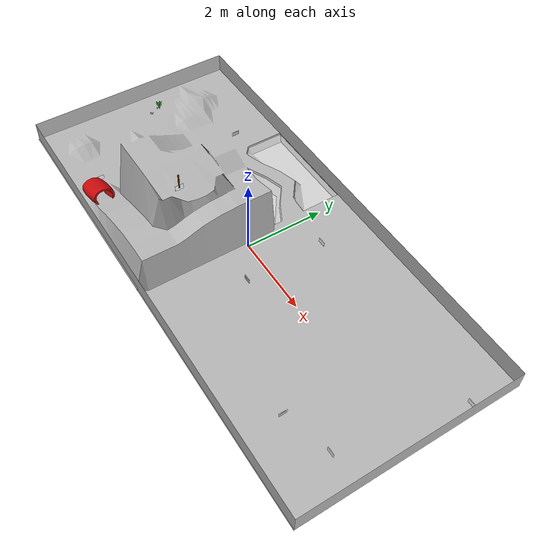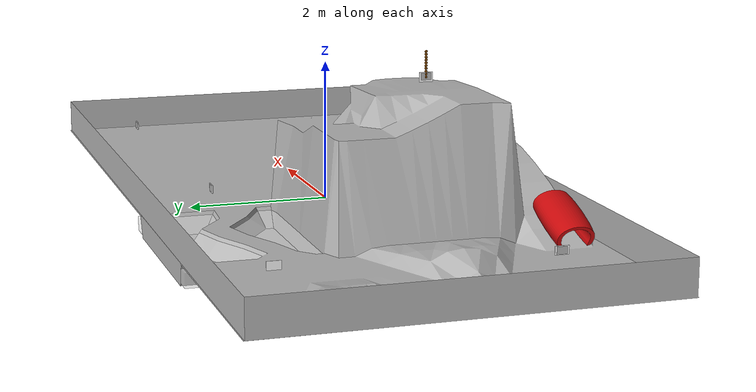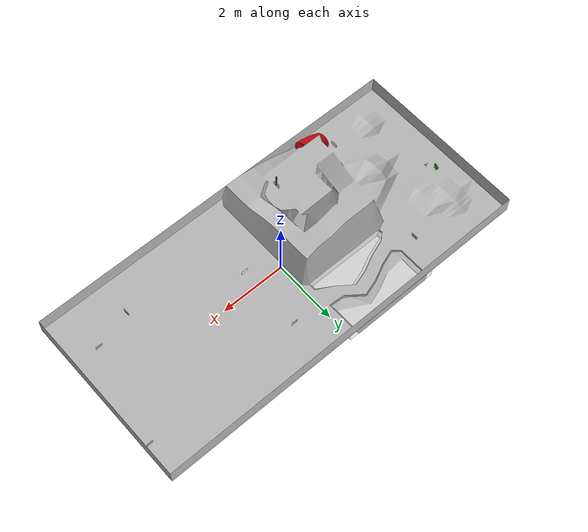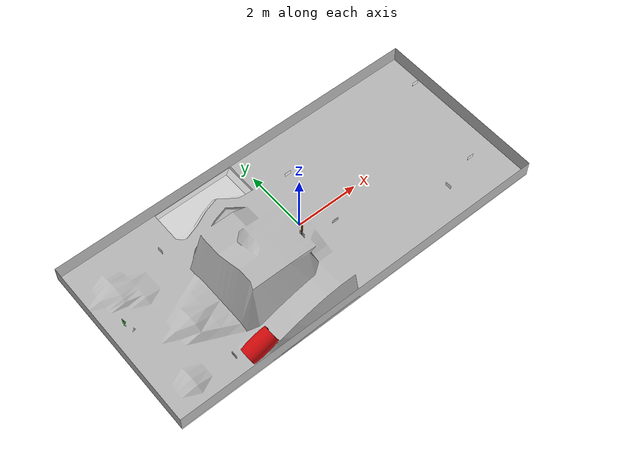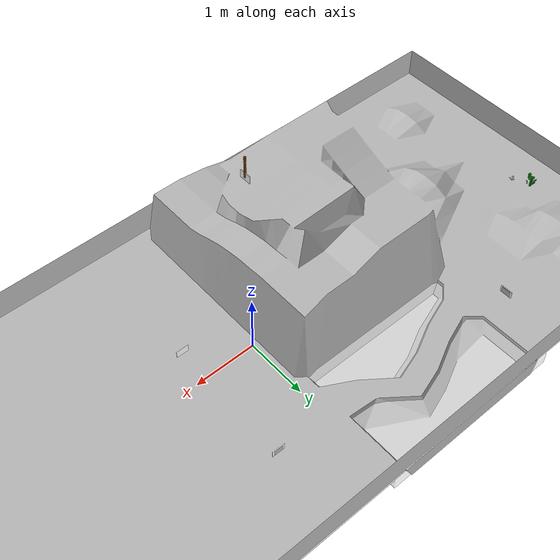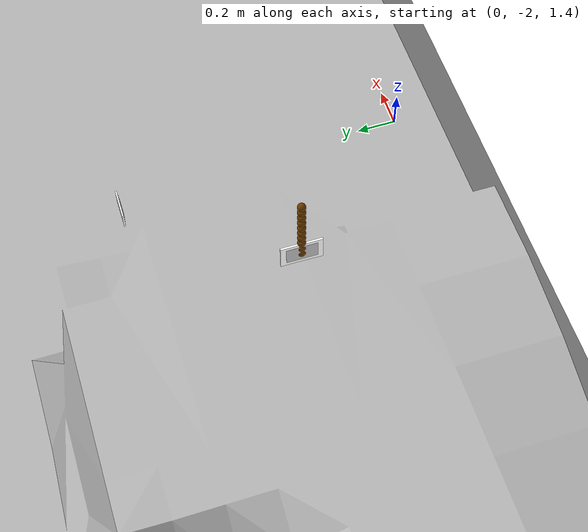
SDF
<sdf version="1.4">
 <world name="default">
  <include><uri>model://full_town</uri><static>true</static></include>
  <include><uri>model://tunnel</uri><pose>-3.2 -2.3 0.29 0 -0.46 0</pose><static>true</static></include>
  <include><uri>model://sun</uri></include>
  <scene><sky><time>12</time></sky><shadows>0</shadows></scene>
  <include>
   <uri>model://water_block</uri>
   <name>water_block</name>
   <pose>-1.56 1.64 -0.15 0 0 0</pose>
   <static>true</static>
  </include>
  <include>
   <uri>model://wall</uri>
   <name>north_wall</name>
   <pose>6 0 0.25 0 0 1.57</pose>
   <static>true</static>
  </include>
  <include>
   <uri>model://wall</uri>
   <name>south_wall</name>
   <pose>-6 0 0.25 0 0 1.57</pose>
   <static>true</static>
  </include>
  <include>
   <uri>model://wall_side</uri>
   <name>east_wall</name>
   <pose>0 -2.75 0.25 0 0 0</pose>
   <static>true</static>
  </include>
  <include>
   <uri>model://wall_side</uri>
   <name>west_wall</name>
   <pose>0 2.75 0.25 0 0 0</pose>
   <static>true</static>
  </include>
  <include><uri>model://car0</uri><static>true</static><pose>5.81 1.64 0.04 0 0 0</pose></include>
  <include><uri>model://car1</uri><static>true</static><pose>5.16 -1.35 0.04 0 0 0</pose></include>
  <include><uri>model://car2</uri><static>true</static><pose>4.00 -1.67 0.04 0 0 -1.57</pose></include>
  <include><uri>model://car3</uri><static>true</static><pose>0.83 -0.54 0.04 0 0 3.14</pose></include>
  <include><uri>model://car4</uri><static>true</static><pose>0.83 1.50 0.04 0 0 0</pose></include>
  <include><uri>model://car5</uri><static>true</static><pose>-3.41 1.71 0.04 0 0 -1.57</pose></include>
  <include><uri>model://car6</uri><static>true</static><pose>-3.80 -2.01 0.04 0 0 1.57</pose></include>
  <include><uri>model://car7</uri><static>true</static><pose>-0.9 -1.2 1.86 0 0 1.57</pose></include>
  <include>
   <uri>model://cactus</uri>
   <name>cactus_01</name>
   <static>true</static>
   <pose>-5.3 0.5 -0.09 0 0 1.57</pose>
  </include>
  <physics type="ode">
   <max_step_size>0.001</max_step_size>
   <real_time_factor>0.3</real_time_factor>
   <real_time_update_rate>1000.0</real_time_update_rate>
  </physics>
  <plugin name="B1_collision_plugin" filename="libcollision_plugin.so">
   <pubPeriod>2</pubPeriod>
   <pubTopic>B1_Hit</pubTopic>
   <collisionObject1>B1</collisionObject1>
  </plugin>
  <plugin name="R1_collision_plugin" filename="libcollision_plugin.so">
   <pubPeriod>2</pubPeriod>
   <pubTopic>R1_Hit</pubTopic>
   <collisionObject1>R1</collisionObject1>
  </plugin>
  <model name="wind_model">
   <pose>-0.9 -1.2 1.3 0 0 0</pose>
   <static>false</static>
   <enable_wind>true</enable_wind>
   <self_collide>true</self_collide>
   <link name="roof">
    <pose>-0.9 -1.2 1.8 0 0 0</pose>
    <collision name="collision">
     <geometry><box><size>1 1 0.1</size></box></geometry>
     <surface><friction><ode><mu>0.1</mu><mu2>0</mu2></ode></friction></surface>
    </collision>
   </link>
   <joint name="roofJoint" type="fixed"><parent>world</parent><child>roof</child></joint>
   <link name="sphere_1">
    <pose>0 0 0.93 0 0 0</pose>
    <enable_wind>true</enable_wind>
    <collision name="collision"><geometry><sphere><radius>0.02</radius></sphere></geometry></collision>
    <visual name="visual">
     <geometry><sphere><radius>0.02</radius></sphere></geometry>
     <material>
      <ambient>1.0 0 0 1.0</ambient>
      <diffuse>.421 0.225 0.0 1.0</diffuse>
      <specular>1.0 0 0 1.0</specular>
     </material>
    </visual>
   </link>
   <joint name="sphere_1_joint" type="ball"><parent>roof</parent><child>sphere_1</child></joint>
   <link name="sphere_2">
    <pose>0 0 0.89 0 0 0</pose>
    <enable_wind>true</enable_wind>
    <collision name="collision"><geometry><sphere><radius>0.02</radius></sphere></geometry></collision>
    <visual name="visual">
     <geometry><sphere><radius>0.02</radius></sphere></geometry>
     <material>
      <ambient>1.0 0 0 1.0</ambient>
      <diffuse>.421 0.225 0.0 1.0</diffuse>
      <specular>1.0 0 0 1.0</specular>
     </material>
    </visual>
   </link>
   <joint name="sphere_2_joint" type="ball"><parent>sphere_1</parent><child>sphere_2</child></joint>
   <link name="sphere_3">
    <pose>0 0 0.85 0 0 0</pose>
    <enable_wind>true</enable_wind>
    <collision name="collision"><geometry><sphere><radius>0.02</radius></sphere></geometry></collision>
    <visual name="visual">
     <geometry><sphere><radius>0.02</radius></sphere></geometry>
     <material>
      <ambient>1.0 0 0 1.0</ambient>
      <diffuse>.421 0.225 0.0 1.0</diffuse>
      <specular>1.0 0 0 1.0</specular>
     </material>
    </visual>
   </link>
   <joint name="sphere_3_joint" type="ball"><parent>sphere_2</parent><child>sphere_3</child></joint>
   <link name="sphere_4">
    <pose>0 0 0.81 0 0 0</pose>
    <enable_wind>true</enable_wind>
    <collision name="collision"><geometry><sphere><radius>0.02</radius></sphere></geometry></collision>
    <visual name="visual">
     <geometry><sphere><radius>0.02</radius></sphere></geometry>
     <material>
      <ambient>1.0 0 0 1.0</ambient>
      <diffuse>.421 0.225 0.0 1.0</diffuse>
      <specular>1.0 0 0 1.0</specular>
     </material>
    </visual>
   </link>
   <joint name="sphere_4_joint" type="ball"><parent>sphere_3</parent><child>sphere_4</child></joint>
   <link name="sphere_5">
    <pose>0 0 0.77 0 0 0</pose>
    <enable_wind>true</enable_wind>
    <collision name="collision"><geometry><sphere><radius>0.02</radius></sphere></geometry></collision>
    <visual name="visual">
     <geometry><sphere><radius>0.02</radius></sphere></geometry>
     <material>
      <ambient>1.0 0 0 1.0</ambient>
      <diffuse>.421 0.225 0.0 1.0</diffuse>
      <specular>1.0 0 0 1.0</specular>
     </material>
    </visual>
   </link>
   <joint name="sphere_5_joint" type="ball"><parent>sphere_4</parent><child>sphere_5</child></joint>
   <link name="sphere_6">
    <pose>0 0 0.73 0 0 0</pose>
    <enable_wind>true</enable_wind>
    <collision name="collision"><geometry><sphere><radius>0.02</radius></sphere></geometry></collision>
    <visual name="visual">
     <geometry><sphere><radius>0.02</radius></sphere></geometry>
     <material>
      <ambient>1.0 0 0 1.0</ambient>
      <diffuse>.421 0.225 0.0 1.0</diffuse>
      <specular>1.0 0 0 1.0</specular>
     </material>
    </visual>
   </link>
   <joint name="sphere_6_joint" type="ball"><parent>sphere_5</parent><child>sphere_6</child></joint>
   <link name="sphere_7">
    <pose>0 0 0.69 0 0 0</pose>
    <enable_wind>true</enable_wind>
    <collision name="collision"><geometry><sphere><radius>0.02</radius></sphere></geometry></collision>
    <visual name="visual">
     <geometry><sphere><radius>0.02</radius></sphere></geometry>
     <material>
      <ambient>1.0 0 0 1.0</ambient>
      <diffuse>.421 0.225 0.0 1.0</diffuse>
      <specular>1.0 0 0 1.0</specular>
     </material>
    </visual>
   </link>
   <joint name="sphere_7_joint" type="ball"><parent>sphere_6</parent><child>sphere_7</child></joint>
   <link name="sphere_8">
    <pose>0 0 0.65 0 0 0</pose>
    <enable_wind>true</enable_wind>
    <collision name="collision"><geometry><sphere><radius>0.02</radius></sphere></geometry></collision>
    <visual name="visual">
     <geometry><sphere><radius>0.02</radius></sphere></geometry>
     <material>
      <ambient>1.0 0 0 1.0</ambient>
      <diffuse>.421 0.225 0.0 1.0</diffuse>
      <specular>1.0 0 0 1.0</specular>
     </material>
    </visual>
   </link>
   <joint name="sphere_8_joint" type="ball"><parent>sphere_7</parent><child>sphere_8</child></joint>
   <link name="sphere_9">
    <pose>0 0 0.61 0 0 0</pose>
    <enable_wind>true</enable_wind>
    <collision name="collision"><geometry><sphere><radius>0.02</radius></sphere></geometry></collision>
    <visual name="visual">
     <geometry><sphere><radius>0.02</radius></sphere></geometry>
     <material>
      <ambient>1.0 0 0 1.0</ambient>
      <diffuse>.421 0.225 0.0 1.0</diffuse>
      <specular>1.0 0 0 1.0</specular>
     </material>
    </visual>
   </link>
   <joint name="sphere_9_joint" type="ball"><parent>sphere_8</parent><child>sphere_9</child></joint>
   <link name="sphere_10">
    <pose>0 0 0.57 0 0 0</pose>
    <enable_wind>true</enable_wind>
    <collision name="collision"><geometry><sphere><radius>0.02</radius></sphere></geometry></collision>
    <visual name="visual">
     <geometry><sphere><radius>0.02</radius></sphere></geometry>
     <material>
      <ambient>1.0 0 0 1.0</ambient>
      <diffuse>.421 0.225 0.0 1.0</diffuse>
      <specular>1.0 0 0 1.0</specular>
     </material>
    </visual>
   </link>
   <joint name="sphere_10_joint" type="ball"><parent>sphere_9</parent><child>sphere_10</child></joint>
  </model>
  <wind><linear_velocity>0 0 0</linear_velocity></wind>
  <plugin name="wind" filename="libWindPlugin.so">
   <force_approximation_scaling_factor>1</force_approximation_scaling_factor>
   <horizontal>
    <magnitude>
     <time_for_rise>10</time_for_rise>
     <sin><amplitude_percent>0.05</amplitude_percent><period>60</period></sin>
     <noise type="gaussian"><mean>0</mean><stddev>0.0002</stddev></noise>
    </magnitude>
    <direction>
     <time_for_rise>30</time_for_rise>
     <sin><amplitude>5</amplitude><period>20</period></sin>
     <noise type="gaussian"><mean>0</mean><stddev>0.03</stddev></noise>
    </direction>
   </horizontal>
   <vertical><noise type="gaussian"><mean>0</mean><stddev>0.03</stddev></noise></vertical>
  </plugin>
 </world>
</sdf>

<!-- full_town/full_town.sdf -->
<sdf version="1.4">
  <model name="full_town">
    <static>true</static>
    <link name="link">
      <collision name="collision">
        <pose>0 0 0 0 0 -1.57</pose>
        <geometry>
          <mesh>
            <uri>model://full_town/meshes/Terrain_2023_v2.dae</uri>
            <scale>12.0 12.0 12.0</scale>
            <normal>0 0 1</normal>
          </mesh>
        </geometry>
        <surface>
          <friction>
            <ode>
              <mu>100</mu>
              <mu2>100</mu2>
            </ode>
          </friction>
        </surface>
      </collision>
      <visual name="visual">
        <pose>0 0 0 0 0 -1.57</pose>
        <cast_shadows>false</cast_shadows>
        <geometry>
          <mesh>
            <uri>model://full_town/meshes/Terrain_2023_v2.dae</uri>
            <scale>12.0 12.0 12.0</scale>
            <normal>0 0 1</normal>
          </mesh>
        </geometry>
        <material>
          <script>
            <uri>model://full_town/materials/scripts</uri>
            <uri>model://full_town/materials/textures</uri>
            <name>full_town</name>
          </script>
        </material>
      </visual>
    </link>
  </model>
</sdf>

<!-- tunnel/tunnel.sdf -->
<sdf version="1.4">
  <model name="tunnel">
    <static>true</static>
    <link name="link">
      <collision name="collision">
        <pose>0 0 0 0 0 -1.57</pose>
        <geometry>
          <mesh>
            <uri>model://tunnel/meshes/tunnel.dae</uri>
            <scale>20.0 20.0 20.0</scale>
            <normal>0 0 1</normal>
          </mesh>
        </geometry>
        <surface>
          <friction>
            <ode>
              <mu>100</mu>
              <mu2>100</mu2>
            </ode>
          </friction>
        </surface>
      </collision>
      <visual name="visual">
        <pose>0 0 0 0 0 -1.57</pose>
        <cast_shadows>false</cast_shadows>
        <geometry>
          <mesh>
            <uri>model://tunnel/meshes/tunnel.dae</uri>
            <scale>20.0 20.0 20.0</scale>
            <normal>0 0 1</normal>
          </mesh>
        </geometry>
        <material>
          <script>
            <uri>model://tunnel/materials/scripts</uri>
            <uri>model://tunnel/materials/textures</uri>
            <name>tunnel</name>
          </script>
        </material>
      </visual>
    </link>
  </model>
</sdf>

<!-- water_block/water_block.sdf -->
<sdf version='1.4'>
  <model name="water_block">
  <link name='water_body'>
    <pose>0 0 0 0 0 0</pose>

    <inertial>
      <inertia>
        <ixx>1e6</ixx>
        <ixy>0</ixy>
        <ixz>0</ixz>
        <iyy>1e6</iyy>
        <iyz>0</iyz>
        <izz>1e6</izz>
      </inertia>
      <mass>1e6</mass>
    </inertial>

    <collision name='collision'>
      <pose>0 0 0.04 0 0 0</pose>
      <geometry>
        <box>
          <size>0.2 0.01 0.16</size>
        </box>
      </geometry>
    </collision>

    <visual name='visual'>
      <geometry>
        <box>
          <size>3 2.25 0.2</size>
        </box>
      </geometry>
      <transparency> 0.5 </transparency>
      <material>
          <ambient>0 0 1 1</ambient>
          <diffuse>1 1 1 1</diffuse>
          <specular>0 0.5 0 0</specular>
          <emissive>0 0 0 1</emissive>
      </material>
    </visual>
  </link>
</model>
</sdf>

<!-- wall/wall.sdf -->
<sdf version='1.4'>
  <model name="wall">
  <link name='wall'>
    <pose>0 0 0 0 0 0</pose>
    <inertial>
      <inertia>
        <ixx>1e-6</ixx>
        <ixy>0</ixy>
        <ixz>0</ixz>
        <iyy>1e-6</iyy>
        <iyz>0</iyz>
        <izz>1e-6</izz>
      </inertia>
      <mass>1e-6</mass>
    </inertial>
    <collision name='collision'>
      <pose>0 0 0 0 0 0</pose>
      <geometry>
        <box>
          <size>5.5 1e-6 0.5</size>
        </box>
      </geometry>
    </collision>
    <visual name='visual'>
      <geometry>
        <box>
          <size>5.5 1e-6 0.5</size>
        </box>
      </geometry>
      <material>
        <script>
          <uri>model://wall/materials/scripts</uri>
          <uri>model://wall/materials/textures</uri>
          <name>wall</name>
        </script>
      </material>
    </visual>
  </link>
</model>
</sdf>

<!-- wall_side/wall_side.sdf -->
<sdf version='1.4'>
  <model name="wall_sides">
  <link name='wall_sides'>
    <pose>0 0 0 0 0 0</pose>
    <inertial>
      <inertia>
        <ixx>1e-6</ixx>
        <ixy>0</ixy>
        <ixz>0</ixz>
        <iyy>1e-6</iyy>
        <iyz>0</iyz>
        <izz>1e-6</izz>
      </inertia>
      <mass>1e-6</mass>
    </inertial>
    <collision name='collision'>
      <pose>0 0 0 0 0 0</pose>
      <geometry>
        <box>
          <size>12 1e-6 0.5</size>
        </box>
      </geometry>
    </collision>
    <visual name='visual'>
      <geometry>
        <box>
          <size>12 1e-6 0.5</size>
        </box>
      </geometry>
      <material>
        <script>
          <uri>model://wall_side/materials/scripts</uri>
          <uri>model://wall_side/materials/textures</uri>
          <name>wall_side</name>
        </script>
      </material>
    </visual>
  </link>
</model>
</sdf>

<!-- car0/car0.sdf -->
<sdf version='1.4'>
  <model name="car0">
  <link name='car_body'>
    <pose>0 0 0 0 0 0</pose>
    <inertial>
      <inertia>
        <ixx>1e6</ixx>
        <ixy>0</ixy>
        <ixz>0</ixz>
        <iyy>1e6</iyy>
        <iyz>0</iyz>
        <izz>1e6</izz>
      </inertia>
      <mass>1e6</mass>
    </inertial>
    <collision name='collision'>
      <pose>0 0 0.04 0 0 0</pose>
      <geometry>
        <box>
          <size>0.2 0.01 0.16</size>
        </box>
      </geometry>
    </collision>
    <visual name='visual'>
      <geometry>
        <box>
          <size>0.2 0.01 0.16</size>
        </box>
      </geometry>
        <material>
          <ambient>0 0 1 1</ambient>
          <diffuse>1 1 1 1</diffuse>
          <specular>0 0.5 0 0</specular>
          <emissive>0 0 0 1</emissive>
        </material>
    </visual>
  </link>
  <link name='plate'>
    <pose>0 0.01 0.02 0 0 0</pose>
    <inertial>
      <inertia>
        <ixx>1e6</ixx>
        <ixy>0</ixy>
        <ixz>0</ixz>
        <iyy>1e6</iyy>
        <iyz>0</iyz>
        <izz>1e6</izz>
      </inertia>
      <mass>1e6</mass>
    </inertial>
    <collision name='collision'>
      <pose>0 0 -2e6 0 0 0</pose>
      <geometry>
        <box>
          <size>1e-6 1e-6 1e-6</size>
        </box>
      </geometry>
    </collision>
    <visual name='visual'>
      <geometry>
        <box>
          <size>0.15 1e-4 0.1</size>
        </box>
      </geometry>
      <material>
        <script>
          <uri>file://materials/scripts</uri>
          <uri>file://materials/textures</uri>
          <name>car0</name>
        </script>
      </material>
    </visual>
  </link>
</model>
</sdf>

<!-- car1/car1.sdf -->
<sdf version='1.4'>
  <model name="car1">
  <link name='car_body'>
    <pose>0 0 0 0 0 0</pose>
    <inertial>
      <inertia>
        <ixx>1e6</ixx>
        <ixy>0</ixy>
        <ixz>0</ixz>
        <iyy>1e6</iyy>
        <iyz>0</iyz>
        <izz>1e6</izz>
      </inertia>
      <mass>1e6</mass>
    </inertial>
    <collision name='collision'>
      <pose>0 0 0.04 0 0 0</pose>
      <geometry>
        <box>
          <size>0.2 0.01 0.16</size>
        </box>
      </geometry>
    </collision>
    <visual name='visual'>
      <geometry>
        <box>
          <size>0.2 0.01 0.16</size>
        </box>
      </geometry>
        <material>
          <ambient>0 0 1 1</ambient>
          <diffuse>1 1 1 1</diffuse>
          <specular>0 0.5 0 0</specular>
          <emissive>0 0 0 1</emissive>
        </material>
    </visual>
  </link>
  <link name='plate'>
    <pose>0 0.01 0.02 0 0 0</pose>
    <inertial>
      <inertia>
        <ixx>1e6</ixx>
        <ixy>0</ixy>
        <ixz>0</ixz>
        <iyy>1e6</iyy>
        <iyz>0</iyz>
        <izz>1e6</izz>
      </inertia>
      <mass>1e6</mass>
    </inertial>
    <collision name='collision'>
      <pose>0 0 -2e6 0 0 0</pose>
      <geometry>
        <box>
          <size>1e-6 1e-6 1e-6</size>
        </box>
      </geometry>
    </collision>
    <visual name='visual'>
      <geometry>
        <box>
          <size>0.15 1e-4 0.1</size>
        </box>
      </geometry>
      <material>
        <script>
          <uri>file://materials/scripts</uri>
          <uri>file://materials/textures</uri>
          <name>car1</name>
        </script>
      </material>
    </visual>
  </link>
</model>
</sdf>

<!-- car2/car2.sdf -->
<sdf version='1.4'>
  <model name="car2">
  <link name='car_body'>
    <pose>0 0 0 0 0 0</pose>
    <inertial>
      <inertia>
        <ixx>1e6</ixx>
        <ixy>0</ixy>
        <ixz>0</ixz>
        <iyy>1e6</iyy>
        <iyz>0</iyz>
        <izz>1e6</izz>
      </inertia>
      <mass>1e6</mass>
    </inertial>
    <collision name='collision'>
      <pose>0 0 0.04 0 0 0</pose>
      <geometry>
        <box>
          <size>0.2 0.01 0.16</size>
        </box>
      </geometry>
    </collision>
    <visual name='visual'>
      <geometry>
        <box>
          <size>0.2 0.01 0.16</size>
        </box>
      </geometry>
        <material>
          <ambient>0 0 1 1</ambient>
          <diffuse>1 1 1 1</diffuse>
          <specular>0 0.5 0 0</specular>
          <emissive>0 0 0 1</emissive>
        </material>
    </visual>
  </link>
  <link name='plate'>
    <pose>0 0.01 0.02 0 0 0</pose>
    <inertial>
      <inertia>
        <ixx>1e6</ixx>
        <ixy>0</ixy>
        <ixz>0</ixz>
        <iyy>1e6</iyy>
        <iyz>0</iyz>
        <izz>1e6</izz>
      </inertia>
      <mass>1e6</mass>
    </inertial>
    <collision name='collision'>
      <pose>0 0 -2e6 0 0 0</pose>
      <geometry>
        <box>
          <size>1e-6 1e-6 1e-6</size>
        </box>
      </geometry>
    </collision>
    <visual name='visual'>
      <geometry>
        <box>
          <size>0.15 1e-4 0.1</size>
        </box>
      </geometry>
      <material>
        <script>
          <uri>file://materials/scripts</uri>
          <uri>file://materials/textures</uri>
          <name>car2</name>
        </script>
      </material>
    </visual>
  </link>
</model>
</sdf>

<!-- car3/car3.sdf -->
<sdf version='1.4'>
  <model name="car3">
  <link name='car_body'>
    <pose>0 0 0 0 0 0</pose>
    <inertial>
      <inertia>
        <ixx>1e6</ixx>
        <ixy>0</ixy>
        <ixz>0</ixz>
        <iyy>1e6</iyy>
        <iyz>0</iyz>
        <izz>1e6</izz>
      </inertia>
      <mass>1e6</mass>
    </inertial>
    <collision name='collision'>
      <pose>0 0 0.04 0 0 0</pose>
      <geometry>
        <box>
          <size>0.2 0.01 0.16</size>
        </box>
      </geometry>
    </collision>
    <visual name='visual'>
      <geometry>
        <box>
          <size>0.2 0.01 0.16</size>
        </box>
      </geometry>
        <material>
          <ambient>0 0 1 1</ambient>
          <diffuse>1 1 1 1</diffuse>
          <specular>0 0.5 0 0</specular>
          <emissive>0 0 0 1</emissive>
        </material>
    </visual>
  </link>
  <link name='plate'>
    <pose>0 0.01 0.02 0 0 0</pose>
    <inertial>
      <inertia>
        <ixx>1e6</ixx>
        <ixy>0</ixy>
        <ixz>0</ixz>
        <iyy>1e6</iyy>
        <iyz>0</iyz>
        <izz>1e6</izz>
      </inertia>
      <mass>1e6</mass>
    </inertial>
    <collision name='collision'>
      <pose>0 0 -2e6 0 0 0</pose>
      <geometry>
        <box>
          <size>1e-6 1e-6 1e-6</size>
        </box>
      </geometry>
    </collision>
    <visual name='visual'>
      <geometry>
        <box>
          <size>0.15 1e-4 0.1</size>
        </box>
      </geometry>
      <material>
        <script>
          <uri>file://materials/scripts</uri>
          <uri>file://materials/textures</uri>
          <name>car3</name>
        </script>
      </material>
    </visual>
  </link>
</model>
</sdf>

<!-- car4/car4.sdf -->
<sdf version='1.4'>
  <model name="car4">
  <link name='car_body'>
    <pose>0 0 0 0 0 0</pose>
    <inertial>
      <inertia>
        <ixx>1e6</ixx>
        <ixy>0</ixy>
        <ixz>0</ixz>
        <iyy>1e6</iyy>
        <iyz>0</iyz>
        <izz>1e6</izz>
      </inertia>
      <mass>1e6</mass>
    </inertial>
    <collision name='collision'>
      <pose>0 0 0.04 0 0 0</pose>
      <geometry>
        <box>
          <size>0.2 0.01 0.16</size>
        </box>
      </geometry>
    </collision>
    <visual name='visual'>
      <geometry>
        <box>
          <size>0.2 0.01 0.16</size>
        </box>
      </geometry>
        <material>
          <ambient>0 0 1 1</ambient>
          <diffuse>1 1 1 1</diffuse>
          <specular>0 0.5 0 0</specular>
          <emissive>0 0 0 1</emissive>
        </material>
    </visual>
  </link>
  <link name='plate'>
    <pose>0 0.01 0.02 0 0 0</pose>
    <inertial>
      <inertia>
        <ixx>1e6</ixx>
        <ixy>0</ixy>
        <ixz>0</ixz>
        <iyy>1e6</iyy>
        <iyz>0</iyz>
        <izz>1e6</izz>
      </inertia>
      <mass>1e6</mass>
    </inertial>
    <collision name='collision'>
      <pose>0 0 -2e6 0 0 0</pose>
      <geometry>
        <box>
          <size>1e-6 1e-6 1e-6</size>
        </box>
      </geometry>
    </collision>
    <visual name='visual'>
      <geometry>
        <box>
          <size>0.15 1e-4 0.1</size>
        </box>
      </geometry>
      <material>
        <script>
          <uri>file://materials/scripts</uri>
          <uri>file://materials/textures</uri>
          <name>car4</name>
        </script>
      </material>
    </visual>
  </link>
</model>
</sdf>

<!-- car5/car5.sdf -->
<sdf version='1.4'>
  <model name="car5">
  <link name='car_body'>
    <pose>0 0 0 0 0 0</pose>
    <inertial>
      <inertia>
        <ixx>1e6</ixx>
        <ixy>0</ixy>
        <ixz>0</ixz>
        <iyy>1e6</iyy>
        <iyz>0</iyz>
        <izz>1e6</izz>
      </inertia>
      <mass>1e6</mass>
    </inertial>
    <collision name='collision'>
      <pose>0 0 0.04 0 0 0</pose>
      <geometry>
        <box>
          <size>0.2 0.01 0.16</size>
        </box>
      </geometry>
    </collision>
    <visual name='visual'>
      <geometry>
        <box>
          <size>0.2 0.01 0.16</size>
        </box>
      </geometry>
        <material>
          <ambient>0 0 1 1</ambient>
          <diffuse>1 1 1 1</diffuse>
          <specular>0 0.5 0 0</specular>
          <emissive>0 0 0 1</emissive>
        </material>
    </visual>
  </link>
  <link name='plate'>
    <pose>0 0.01 0.02 0 0 0</pose>
    <inertial>
      <inertia>
        <ixx>1e6</ixx>
        <ixy>0</ixy>
        <ixz>0</ixz>
        <iyy>1e6</iyy>
        <iyz>0</iyz>
        <izz>1e6</izz>
      </inertia>
      <mass>1e6</mass>
    </inertial>
    <collision name='collision'>
      <pose>0 0 -2e6 0 0 0</pose>
      <geometry>
        <box>
          <size>1e-6 1e-6 1e-6</size>
        </box>
      </geometry>
    </collision>
    <visual name='visual'>
      <geometry>
        <box>
          <size>0.15 1e-4 0.1</size>
        </box>
      </geometry>
      <material>
        <script>
          <uri>file://materials/scripts</uri>
          <uri>file://materials/textures</uri>
          <name>car5</name>
        </script>
      </material>
    </visual>
  </link>
</model>
</sdf>

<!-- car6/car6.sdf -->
<sdf version='1.4'>
  <model name="car6">
  <link name='car_body'>
    <pose>0 0 0 0 0 0</pose>
    <inertial>
      <inertia>
        <ixx>1e6</ixx>
        <ixy>0</ixy>
        <ixz>0</ixz>
        <iyy>1e6</iyy>
        <iyz>0</iyz>
        <izz>1e6</izz>
      </inertia>
      <mass>1e6</mass>
    </inertial>
    <collision name='collision'>
      <pose>0 0 0.04 0 0 0</pose>
      <geometry>
        <box>
          <size>0.2 0.01 0.16</size>
        </box>
      </geometry>
    </collision>
    <visual name='visual'>
      <geometry>
        <box>
          <size>0.2 0.01 0.16</size>
        </box>
      </geometry>
        <material>
          <ambient>0 0 1 1</ambient>
          <diffuse>1 1 1 1</diffuse>
          <specular>0 0.5 0 0</specular>
          <emissive>0 0 0 1</emissive>
        </material>
    </visual>
  </link>
  <link name='plate'>
    <pose>0 0.01 0.02 0 0 0</pose>
    <inertial>
      <inertia>
        <ixx>1e6</ixx>
        <ixy>0</ixy>
        <ixz>0</ixz>
        <iyy>1e6</iyy>
        <iyz>0</iyz>
        <izz>1e6</izz>
      </inertia>
      <mass>1e6</mass>
    </inertial>
    <collision name='collision'>
      <pose>0 0 -2e6 0 0 0</pose>
      <geometry>
        <box>
          <size>1e-6 1e-6 1e-6</size>
        </box>
      </geometry>
    </collision>
    <visual name='visual'>
      <geometry>
        <box>
          <size>0.15 1e-4 0.1</size>
        </box>
      </geometry>
      <material>
        <script>
          <uri>file://materials/scripts</uri>
          <uri>file://materials/textures</uri>
          <name>car6</name>
        </script>
      </material>
    </visual>
  </link>
</model>
</sdf>

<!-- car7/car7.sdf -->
<sdf version='1.4'>
  <model name="car7">
  <link name='car_body'>
    <pose>0 0 0 0 0 0</pose>
    <inertial>
      <inertia>
        <ixx>1e6</ixx>
        <ixy>0</ixy>
        <ixz>0</ixz>
        <iyy>1e6</iyy>
        <iyz>0</iyz>
        <izz>1e6</izz>
      </inertia>
      <mass>1e6</mass>
    </inertial>
    <collision name='collision'>
      <pose>0 0 0.04 0 0 0</pose>
      <geometry>
        <box>
          <size>0.2 0.01 0.16</size>
        </box>
      </geometry>
    </collision>
    <visual name='visual'>
      <geometry>
        <box>
          <size>0.2 0.01 0.16</size>
        </box>
      </geometry>
        <material>
          <ambient>0 0 1 1</ambient>
          <diffuse>1 1 1 1</diffuse>
          <specular>0 0.5 0 0</specular>
          <emissive>0 0 0 1</emissive>
        </material>
    </visual>
  </link>
  <link name='plate'>
    <pose>0 0.01 0.02 0 0 0</pose>
    <inertial>
      <inertia>
        <ixx>1e6</ixx>
        <ixy>0</ixy>
        <ixz>0</ixz>
        <iyy>1e6</iyy>
        <iyz>0</iyz>
        <izz>1e6</izz>
      </inertia>
      <mass>1e6</mass>
    </inertial>
    <collision name='collision'>
      <pose>0 0 -2e6 0 0 0</pose>
      <geometry>
        <box>
          <size>1e-6 1e-6 1e-6</size>
        </box>
      </geometry>
    </collision>
    <visual name='visual'>
      <geometry>
        <box>
          <size>0.15 1e-4 0.1</size>
        </box>
      </geometry>
      <material>
        <script>
          <uri>file://materials/scripts</uri>
          <uri>file://materials/textures</uri>
          <name>car7</name>
        </script>
      </material>
    </visual>
  </link>
</model>
</sdf>

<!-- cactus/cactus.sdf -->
<sdf version='1.4'>
  <model name="cactus">
      <static>true</static>
      <link name="link">
        <inertial>
          <pose>0 0 0 0 0 0</pose>
          <mass>1.0</mass>
          <inertia>
            <ixx>0.0385483333333</ixx>
            <ixy>000000</ixy>
            <ixz>0.000000</ixz>
            <iyy>0.107087533333</iyy>
            <iyz>0.000000</iyz>
            <izz>0.1243542</izz>
          </inertia>
        </inertial>
        <collision name="collision">
          <pose>0 0 0 0 0 0</pose>
          <geometry>
            <mesh>
                <uri>model://cactus/meshes/cactus.dae</uri>
                <scale>0.01 0.01 0.01</scale>
            </mesh>
          </geometry>
        </collision>
        <visual name="visual">
          <pose>0 0 0 0 0 0</pose>
          <geometry>
            <mesh>
                <uri>model://cactus/meshes/cactus.dae</uri>
                <scale>0.05 0.05 0.05</scale>
            </mesh>
          </geometry>
        </visual>
      </link>
    </model>
</sdf>
